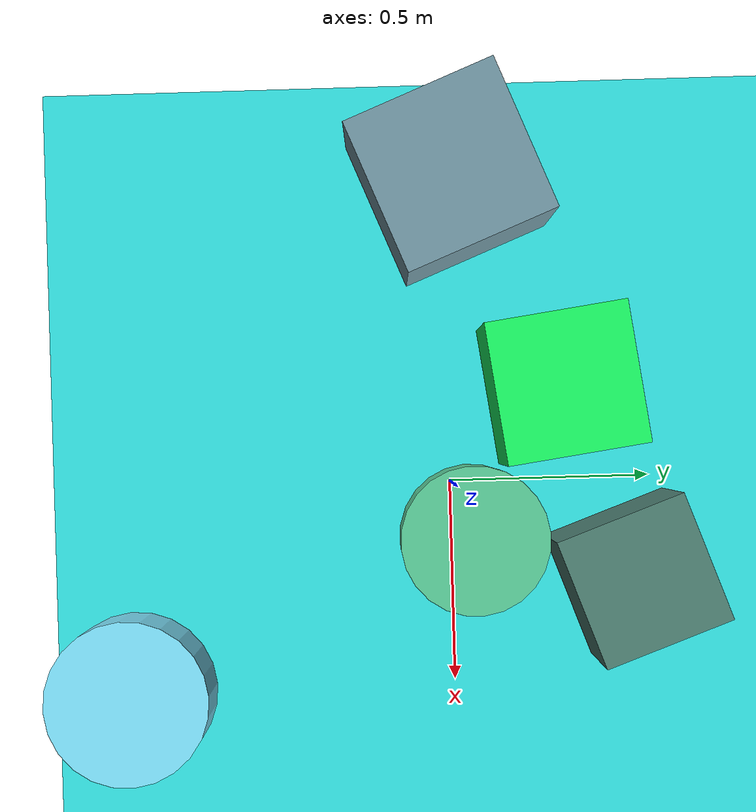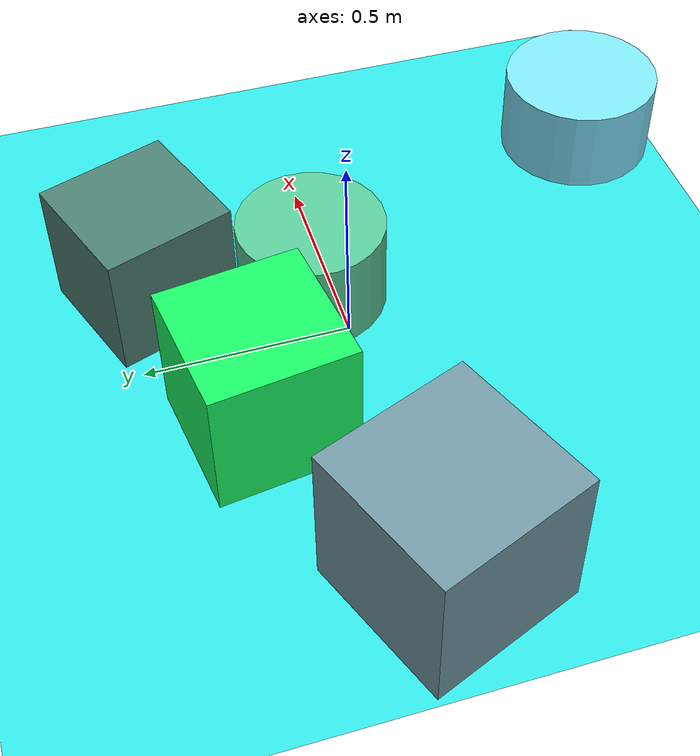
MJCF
<mujoco>
   <asset>
<texture type="skybox" builtin="gradient" rgb1="0.5 0.2 0.4" rgb2="0.3 0.4 1.0" width="256" height="256"/>
<texture name="flat_0" builtin="flat" rgb1="0.5 0.9 1.0" rgb2="0.5 0.9 1.0"  width="200" height="200"/>
<texture name="gradient_1" builtin="gradient" rgb1="0.2 0.8 0.8" rgb2="0.7 0.4 0.5" width="200" height="200"/>
<texture name="checker_2" builtin="checker" rgb1="0.5 1.0 0.6" rgb2="0.2 0.6 0.6" width="200" height="200"/>
<texture name="checker_3" builtin="checker" rgb1="0.1 0.7 0.1" rgb2="0.5 0.3 0.8" width="200" height="200"/>
<texture name="flat_4" builtin="flat" rgb1="0.1 1.0 0.4" rgb2="0.1 1.0 0.4"  width="200" height="200"/><material name="flat_0_mat" reflectance="0" texture="flat_0" texuniform="true"/>
<material name="gradient_1_mat" reflectance="0" texture="gradient_1" texuniform="true"/>
<material name="checker_2_mat" reflectance="0" texrepeat="2 2" texture="checker_2" texuniform="false" />
<material name="checker_3_mat" reflectance="0" texrepeat="2 2" texture="checker_3" texuniform="false" />
<material name="flat_4_mat" reflectance="0" texture="flat_4" texuniform="true"/>
   </asset>

   <worldbody>
      <light diffuse=".9 .9 .9" pos="0 0 3" dir="0 0 -1"/>
     <geom type="plane" size="1 1 0.1" rgba="0.2 0.9 0.9 1"/>
<geom type="cylinder" pos="0.51 -0.8 0.11" size="0.2 0.11 0.11" material="flat_0_mat" euler="0 0 64" />
<geom type="box" pos="-0.74 0.01 0.19" size="0.19 0.19 0.19" material="gradient_1_mat" euler="0 0 22" />
<geom type="cylinder" pos="0.14 0.05 0.12" size="0.18 0.12 0.12" material="checker_2_mat" euler="0 0 80" />
<geom type="box" pos="0.24 0.44 0.16" size="0.16 0.16 0.16" material="checker_3_mat" euler="0 0 20" />
<geom type="box" pos="-0.23 0.27 0.17" size="0.17 0.17 0.17" material="flat_4_mat" euler="0 0 8" /><camera euler="60 0 180" fovy="60" name="camera1" pos="-0.2 -1.5 1"></camera>   </worldbody>
</mujoco>
